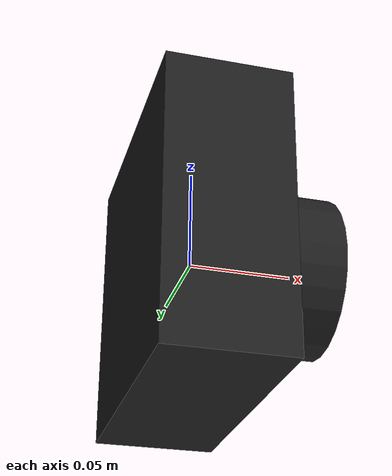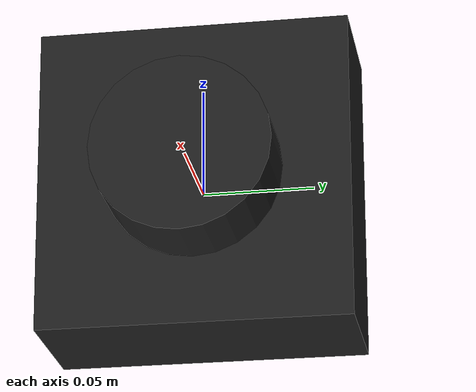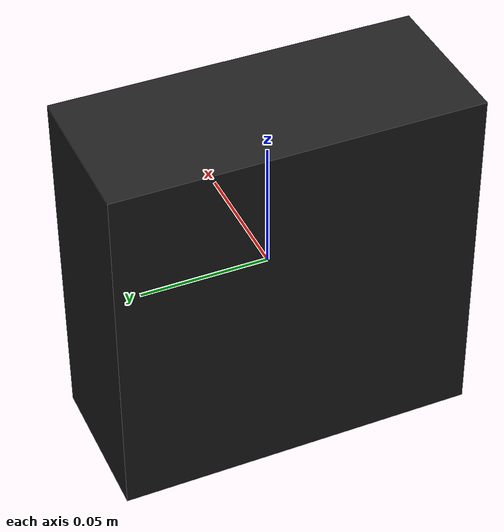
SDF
<?xml version="1.0"?>
<sdf version="1.6">
  <model name="usb_cam">
    <link name="usb_cam_link">
      <gravity>0</gravity>
      <inertial>
        <mass>0.2</mass>
        <inertia><ixx>0.0004</ixx><ixy>0</ixy><ixz>0</ixz><iyy>0.0004</iyy><iyz>0</iyz><izz>0.0004</izz></inertia>
      </inertial>
      <visual name="body">
        <geometry><box><size>0.06 0.14 0.14</size></box></geometry>
        <material><script><uri>file://media/materials/scripts/gazebo.material</uri><name>Gazebo/Black</name></script></material>
      </visual>
      <visual name="lens">
        <pose>0.0475 0 0 0 1.5707963 0</pose>
        <geometry><cylinder><radius>0.04</radius><length>0.035</length></cylinder></geometry>
        <material><script><uri>file://media/materials/scripts/gazebo.material</uri><name>Gazebo/Black</name></script></material>
      </visual>
      <collision name="body_collision">
        <geometry><box><size>0.06 0.14 0.14</size></box></geometry>
      </collision>
      <sensor name="rgb_camera" type="camera">
        <always_on>1</always_on>
        <update_rate>15</update_rate>
        <visualize>false</visualize>
        <camera name="rgb">
          <horizontal_fov>1.3962634</horizontal_fov>
          <image><width>3840</width><height>2160</height><format>R8G8B8</format></image>
          <clip><near>0.05</near><far>100</far></clip>
          <noise><type>gaussian</type><mean>0.0</mean><stddev>0.0</stddev></noise>
        </camera>
        <plugin name="gazebo_ros_rgb_camera" filename="libgazebo_ros_camera.so">
          <robotNamespace>/</robotNamespace>
          <cameraName>usb_cam</cameraName>
          <imageTopicName>image_raw</imageTopicName>
          <cameraInfoTopicName>camera_info</cameraInfoTopicName>
          <frameName>usb_cam_optical_frame</frameName>
          <updateRate>15</updateRate>
          <distortionK1>0.0</distortionK1>
          <distortionK2>0.0</distortionK2>
          <distortionK3>0.0</distortionK3>
          <distortionT1>0.0</distortionT1>
          <distortionT2>0.0</distortionT2>
        </plugin>
      </sensor>
    </link>
  </model>
</sdf>
